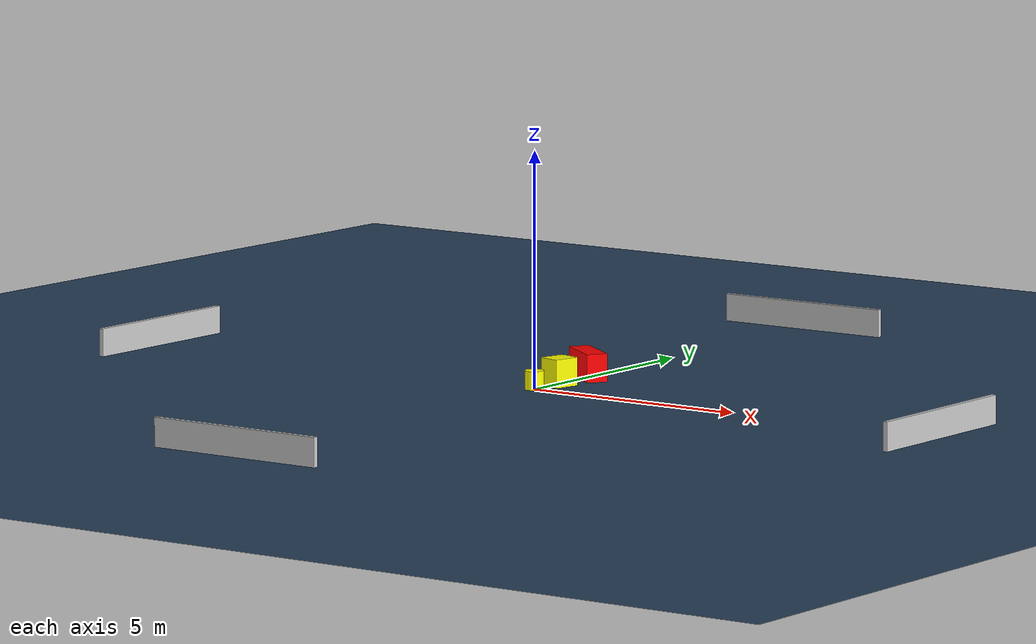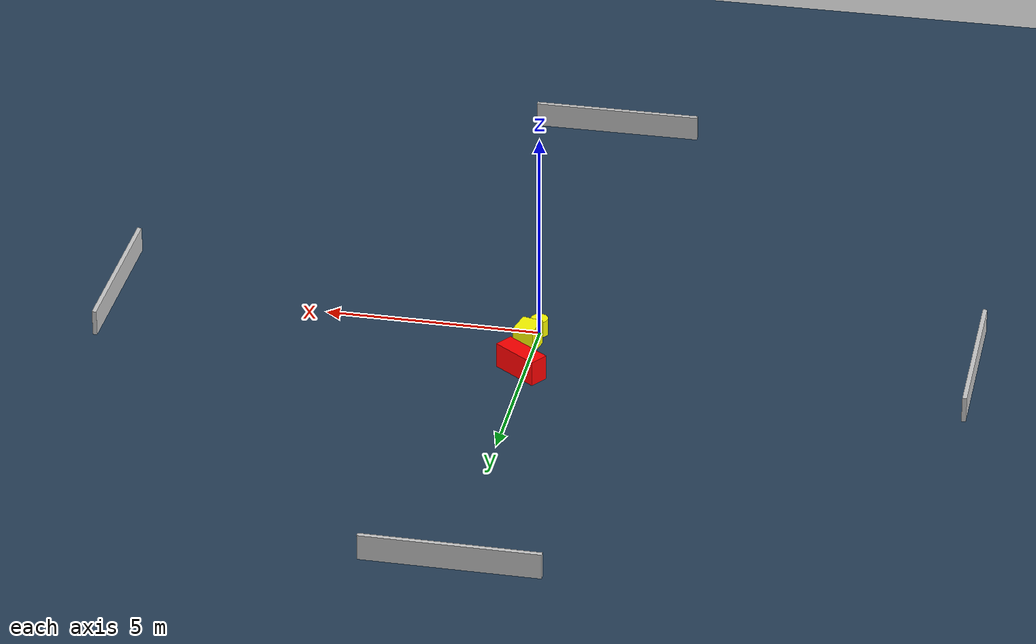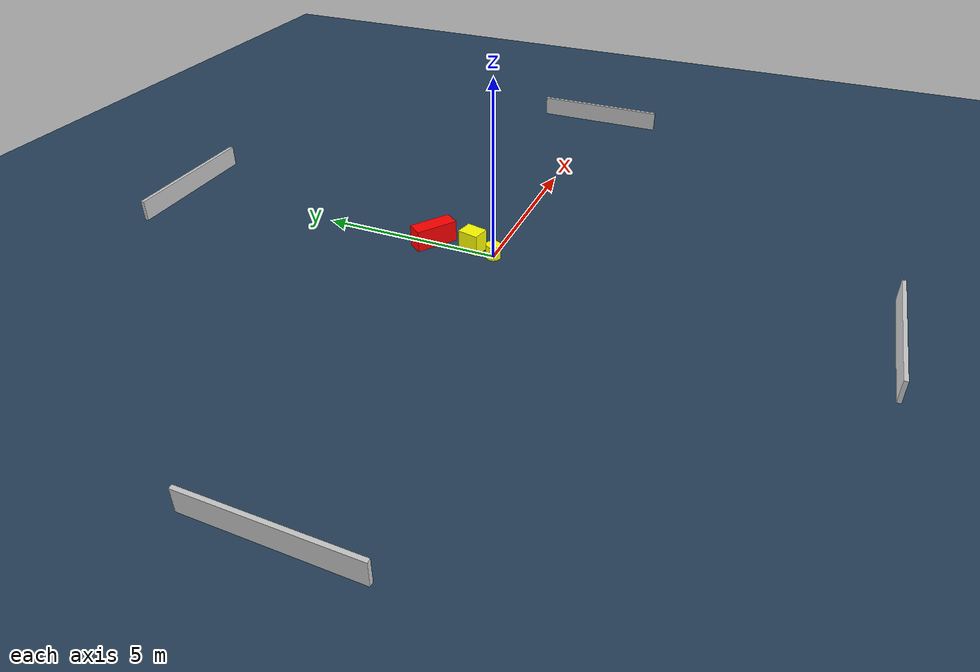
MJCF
<?xml version="1.0" ?>
<mujoco model="generated_environment">
  <option timestep="0.01" integrator="RK4" cone="elliptic"/>
  <default>
    <geom density="1"/>
  </default>
  <asset>
    <texture builtin="gradient" height="3072" name="skybox" rgb1="0.3 0.5 0.7" rgb2="0 0 0" type="skybox" width="512"/>
    <texture builtin="checker" height="300" name="groundplane" rgb1="0.2 0.3 0.4" rgb2="0.1 0.2 0.3" type="2d" width="300"/>
    <material name="groundplane" reflectance="0.2" texrepeat="5 5" texture="groundplane"/>
  </asset>
  <worldbody>
    <light dir="0 0 -1" directional="true" pos="0 0 1.5"/>
    <geom condim="3" friction="0.5 0.005 0.001" material="groundplane" name="floor" pos="0 0 0" size="0 0 0.05" type="plane"/>
    <body name="walls">
      <geom name="wall_1" condim="4" pos="-10.0 0.0 0.3" rgba="0.800000011920929 0.800000011920929 0.800000011920929 1.0" size="0.05 2.0 0.3" type="box"/>
      <geom name="wall_2" condim="4" pos="10.0 0.0 0.3" rgba="0.800000011920929 0.800000011920929 0.800000011920929 1.0" size="0.05 2.0 0.3" type="box"/>
      <geom name="wall_3" condim="4" pos="0.0 -10.0 0.3" rgba="0.800000011920929 0.800000011920929 0.800000011920929 1.0" size="2.0 0.05 0.3" type="box"/>
      <geom name="wall_4" condim="4" pos="0.0 10.0 0.3" rgba="0.800000011920929 0.800000011920929 0.800000011920929 1.0" size="2.0 0.05 0.3" type="box"/>
    </body>
    <body name="robot">
      <joint name="joint_x" type="slide" pos="0 0 0" axis="1 0 0"/>
      <joint name="joint_y" type="slide" pos="0 0 0" axis="0 1 0"/>
      <geom name="robot" type="cylinder" pos="0.0 0.0 0.2" size="0.2 0.2 0.0" mass="5.0" friction="1.0 0.005 0.0001" condim="4" rgba="1.0 1.0 0.0 1.0"/>
    </body>
    <body name="obstacle_1_movable">
      <geom name="obstacle_1_movable" condim="4" pos="0.14745020732316805 0.6690963065879832 0.3" euler="0 0 77.40510632956018" friction="0.0 0.005 0.001" rgba="1.0 1.0 0.0 1.0" size="0.29261356363865304 0.23760048618184512 0.3" type="box" mass="0.1"/>
      <joint type="free"/>
    </body>
    <body name="obstacle_2_static">
      <geom name="obstacle_2_static" condim="4" pos="0.07375700089486766 1.8016652515153992 0.3" euler="0 0 234.2562988948818" friction="0.0 0.005 0.001" rgba="1.0 0.0 0.0 1.0" size="0.22410257749476736 0.5872538445930137 0.3" type="box"/>
    </body>
  </worldbody>
  <actuator>
    <motor name="actuator_x" joint="joint_x" gear="1" ctrlrange="-1 1"/>
    <motor name="actuator_y" joint="joint_y" gear="1" ctrlrange="-1 1"/>
  </actuator>
</mujoco>
